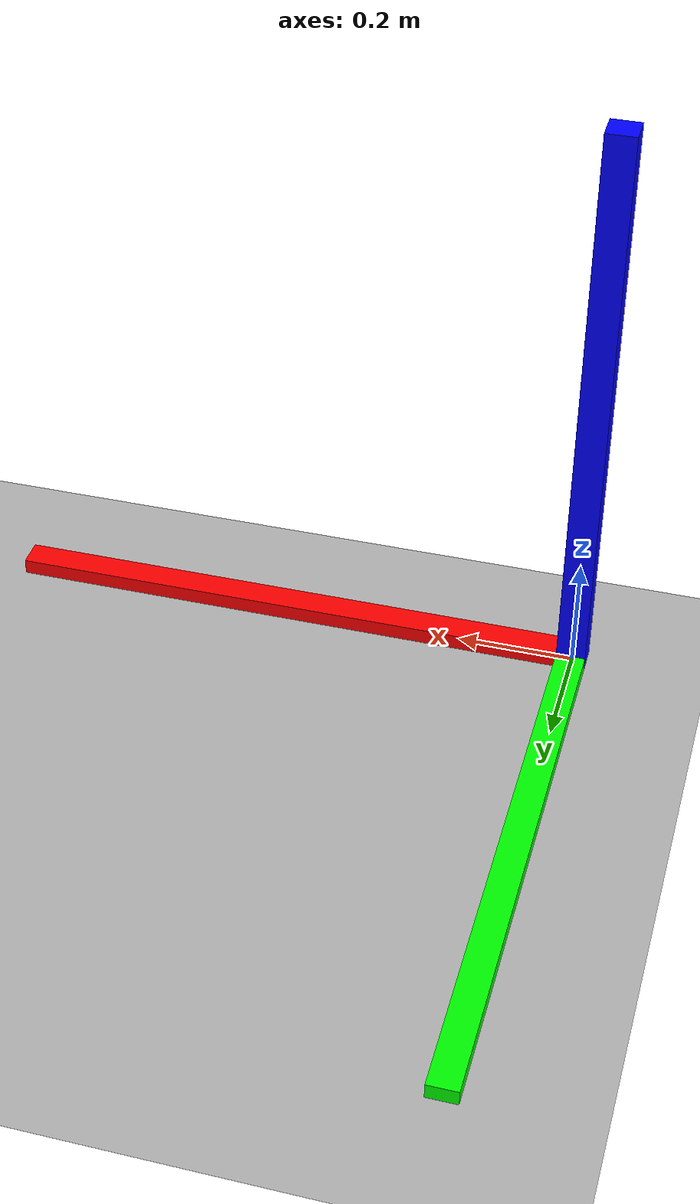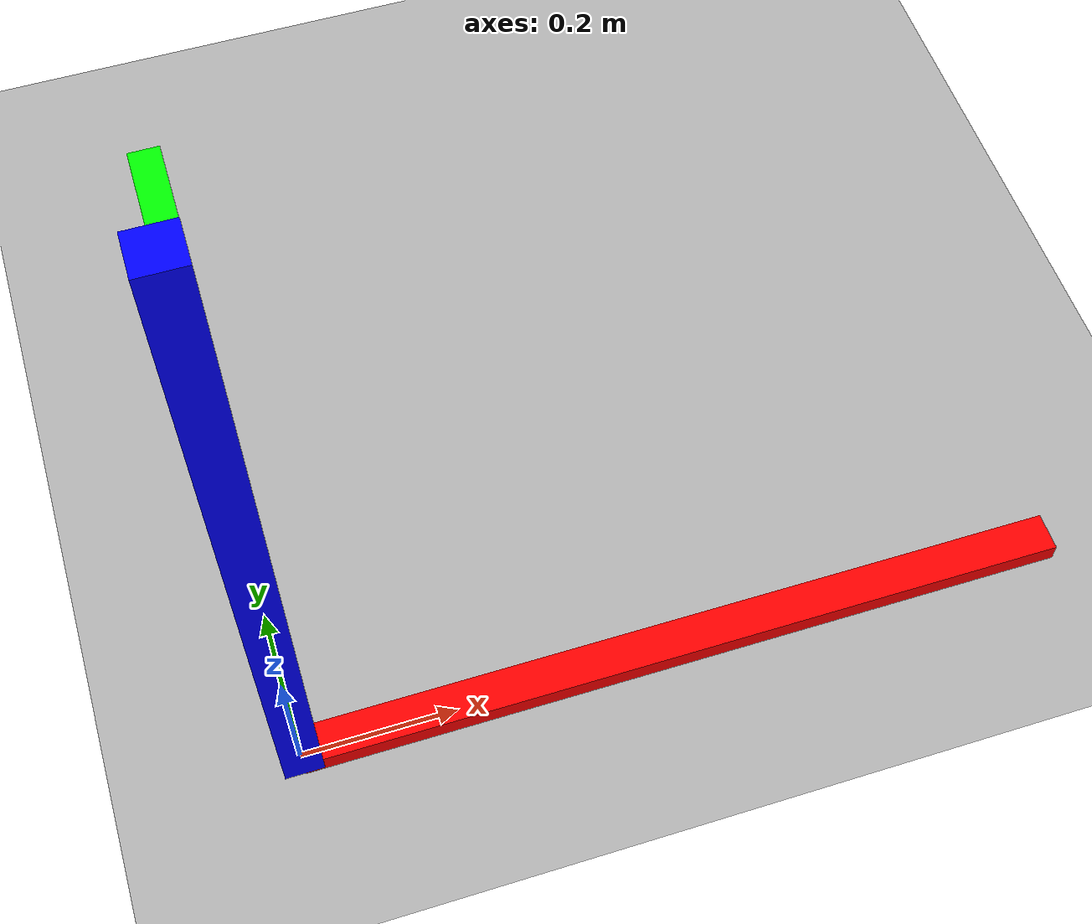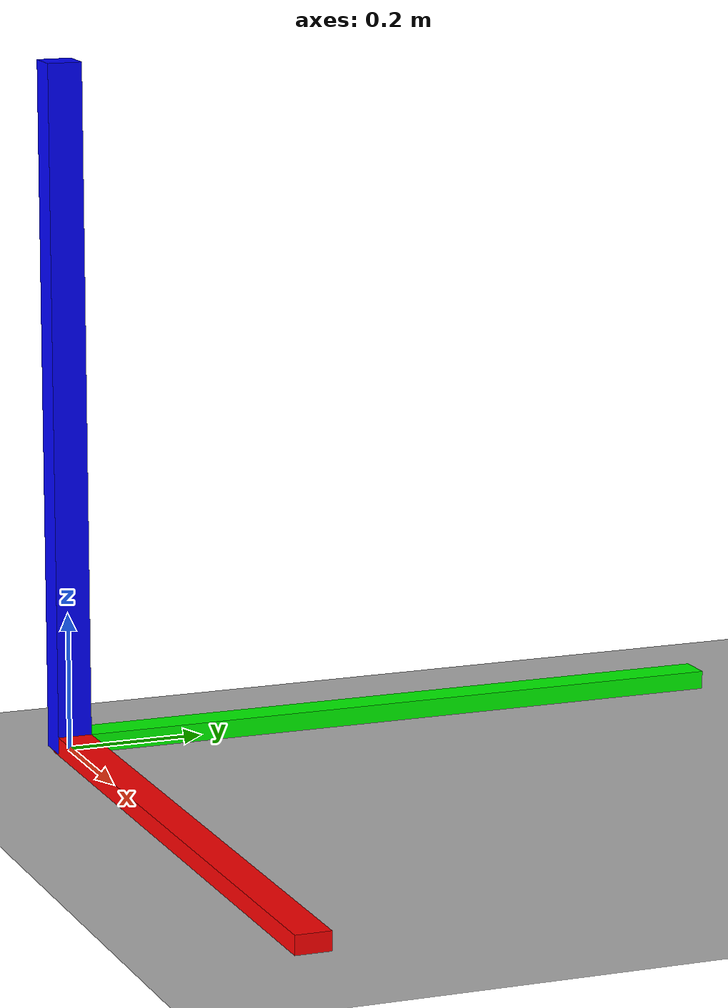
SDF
<?xml version="1.0" ?>
<sdf version="1.5">
<world name="default">

<plugin name="gz_world_manager" filename="libgz_world_manager.so" />

<physics type="ode">
  <gravity>0 0.5 -9.8</gravity>
  <ode>
    <solver>
      <type>quick</type>
      <iters>30</iters>
      <sor>1.4</sor>
    </solver>
    <constraints>
      <cfm>0.0</cfm>
      <erp>0.12</erp>
      <contact_max_correcting_vel>100.0</contact_max_correcting_vel>
      <contact_surface_layer>0.0</contact_surface_layer>
    </constraints>
  </ode>
  <real_time_update_rate>-1</real_time_update_rate>
  <max_step_size>0.0005</max_step_size>
</physics>

<scene>
  <ambient> 0.22 0.22 0.22 1</ambient>
  <background>0.97 0.97 0.97 1</background>
  <shadows>false</shadows>
  <grid>false</grid>
</scene>

<!-- caxis -->
<model name="caxis">
    <static>true</static>
	<link name="link">
		<visual name="xaxis">
        <pose>0.5 0 0 0 0 0</pose>
            <geometry>
                <box>
                    <size>1 0.05 0.05</size>
                </box>
            </geometry>
			<material>
				<ambient>1.0 0.0 0.0 1</ambient>
				<diffuse>1.0 0.0 0.0 1</diffuse>
			</material>
		</visual>
		<visual name="yaxis">
        <pose>0 0.5 0 0 0 0</pose>
            <geometry>
                <box>
                    <size>0.05 1 0.05</size>
                </box>
            </geometry>
			<material>
				<ambient>0.0 1.0 0.0 1</ambient>
				<diffuse>0.0 1.0 0.0 1</diffuse>
			</material>
		</visual>
		<visual name="zaxis">
        <pose>0 0 0.5 0 0 0</pose>
            <geometry>
                <box>
                    <size>0.05 0.05 1</size>
                </box>
            </geometry>
			<material>
				<ambient>0.0 0.0 1.0 1</ambient>
				<diffuse>0.0 0.0 1.0 1</diffuse>
			</material>
		</visual>
	</link>
</model>

<model name="ground_plane">
	<static>true</static>
	<link name="link">
		<collision name="collision">
			<geometry>
				<plane>
					<normal>0 0 1</normal>
					<size>500 500</size>
				</plane>
			</geometry>
			<surface>
				<friction>
					<ode>
						<mu>100</mu>
						<mu2>50</mu2>
					</ode>
				</friction>
			</surface>
		</collision>
		<visual name="visual">
			<cast_shadows>false</cast_shadows>
			<geometry>
				<plane>
					<normal>0 0 1</normal>
					<size>500 500</size>
				</plane>
			</geometry>
			<material>
				<ambient>0.7 0.7 0.7 1</ambient>
				<diffuse>0.7 0.7 0.7 1</diffuse>
				<specular>0.0 0.0 0.0 1</specular>
				<emissive>0 0 0 0</emissive>
			</material>
		</visual>
	</link>
</model>

<!-- A global light source -->
<include>
  <uri>model://sun</uri>
</include>

</world>

</sdf>
